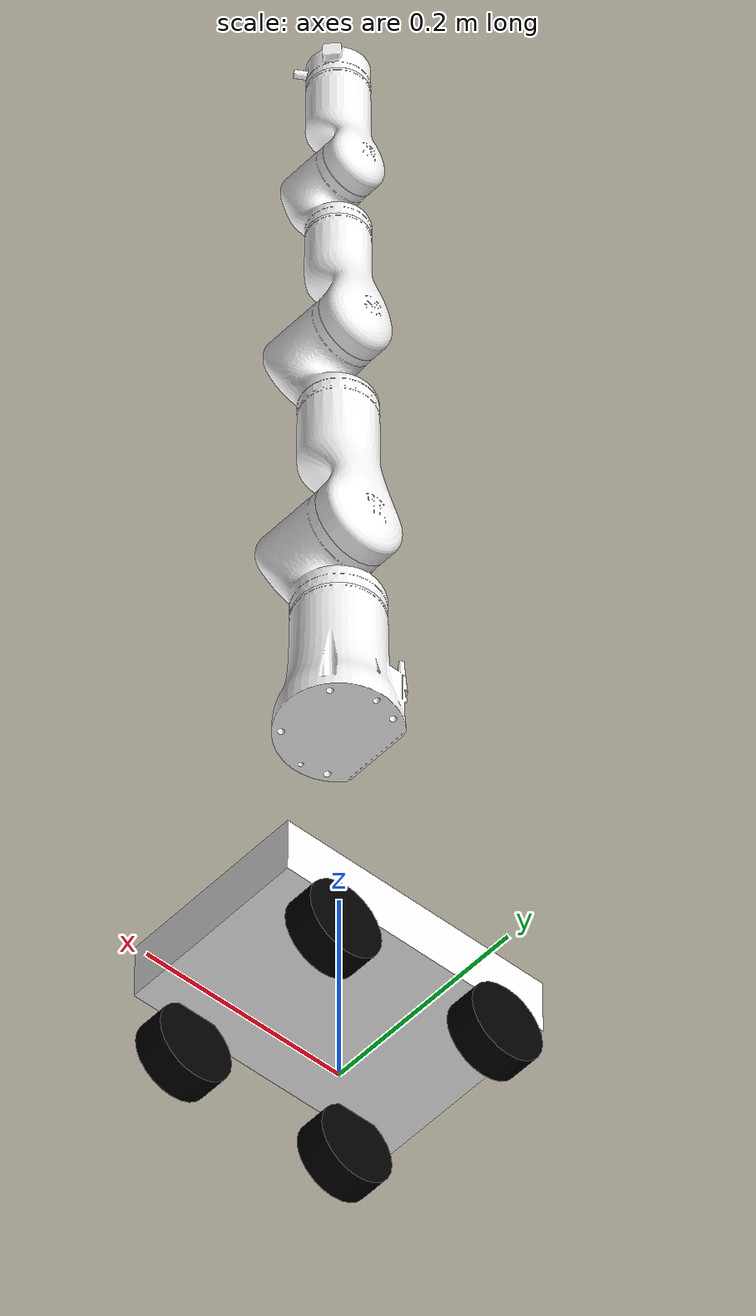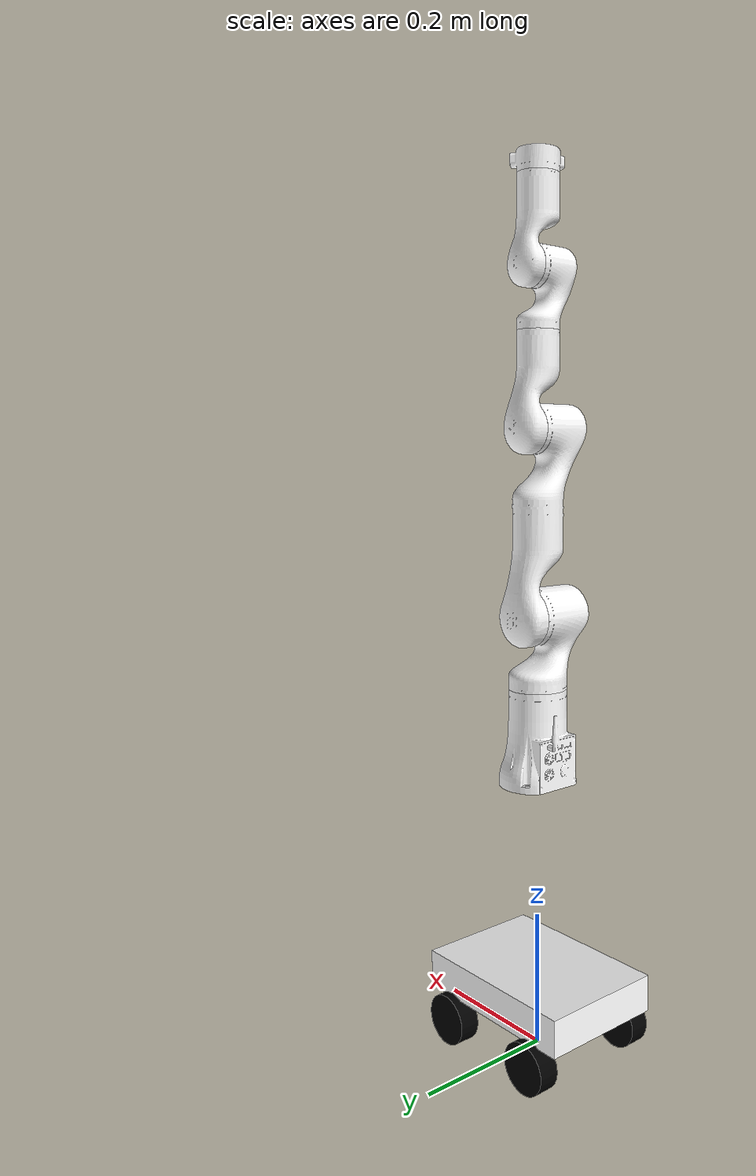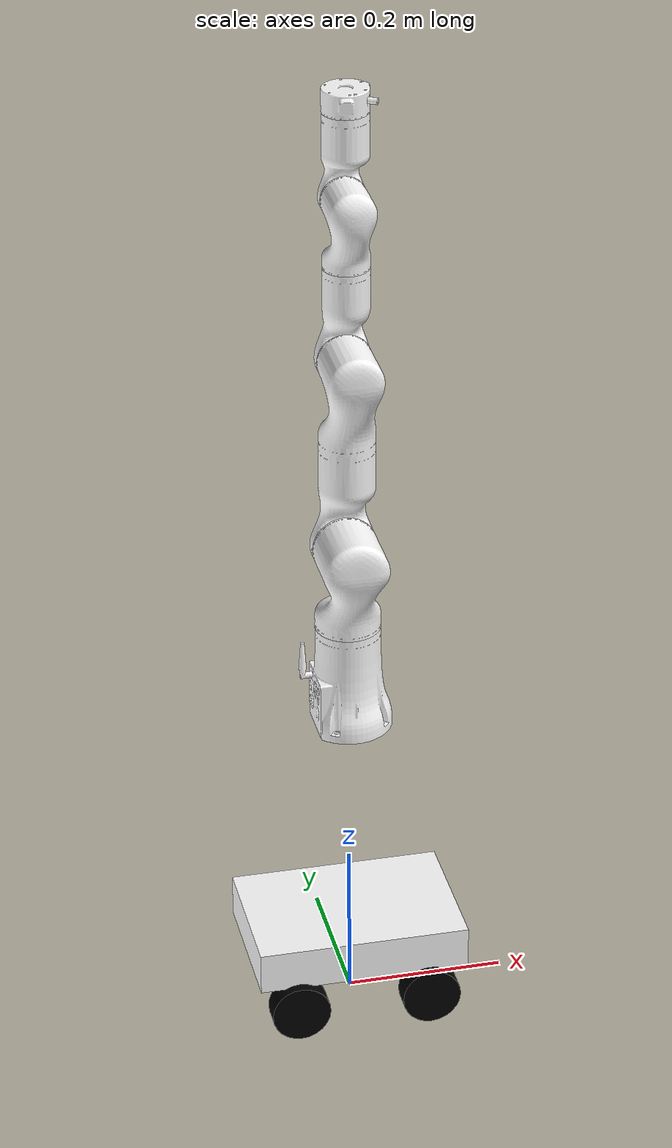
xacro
<?xml version="1.0" encoding="utf-8"?>
<robot name="rm_65_with_wheeltec" xmlns:xacro="http://www.ros.org/wiki/xacro">
<xacro:include filename="$(find rm_65_description)/urdf/rm_65.transmission.xacro"/>
<xacro:include filename="$(find rm_65_description)/urdf/rm_65.gazebo.xacro"/>

  <!-- =========================== Wheeltec Mobile Base =========================== -->
  <link name="base_link_wheeltec">
    <inertial>
      <origin xyz="0 0 0.0975" rpy="0 0 0"/>
      <mass value="5.0"/>
      <inertia
        ixx="0.1"
        ixy="0.0"
        ixz="0.0"
        iyy="0.1"
        iyz="0.0"
        izz="0.1"/>
    </inertial>
    <visual>
      <origin xyz="0 0 0.0975" rpy="0 0 0" />
      <geometry>
        <box size="0.27 0.185 0.055"/>
      </geometry>
      <material name="white">
        <color rgba="1 1 1 1"/>
      </material>
    </visual>
    <collision>
      <origin xyz="0 0 0.0975" rpy="0 0 0" />
      <geometry>
        <box size="0.27 0.185 0.055"/>
      </geometry>
    </collision>
  </link>

  <!-- 添加Gazebo物理属性 -->
  <gazebo reference="base_link_wheeltec">
    <mu1 value="0.5"/>
    <mu2 value="0.5"/>
    <kp value="1000000.0"/>
    <kd value="100.0"/>
  </gazebo>

  <!-- 前左轮 -->
  <joint name="left_front_joint" type="continuous">
    <origin xyz="0.085 0.09 0.0375" rpy="1.57 0 0"/>
    <parent link="base_link_wheeltec"/>
    <child link="left_front_link"/>
    <axis xyz="0 1 0"/>
  </joint>

  <link name="left_front_link">
    <inertial>
      <origin xyz="0 0 0" rpy="0 0 0"/>
      <mass value="0.5"/>
      <inertia
        ixx="0.0005"
        ixy="0.0"
        ixz="0.0"
        iyy="0.001"
        iyz="0.0"
        izz="0.0005"/>
    </inertial>
    <visual>
      <origin xyz="0 0 0" rpy="0 0 0" />
      <geometry>
        <cylinder radius="0.0375" length="0.03"/>
      </geometry>
      <material name="black">
        <color rgba="0 0 0 1"/>
      </material>
    </visual>
    <collision>
      <origin xyz="0 0 0" rpy="0 0 0" />
      <geometry>
        <cylinder radius="0.0375" length="0.03"/>
      </geometry>
    </collision>
  </link>

  <!-- 前右轮 -->
  <joint name="right_front_joint" type="continuous">
    <origin xyz="0.085 -0.09 0.0375" rpy="1.57 0 0"/>
    <parent link="base_link_wheeltec"/>
    <child link="right_front_link"/>
    <axis xyz="0 1 0"/>
  </joint>

  <link name="right_front_link">
    <inertial>
      <origin xyz="0 0 0" rpy="0 0 0"/>
      <mass value="0.5"/>
      <inertia
        ixx="0.0005"
        ixy="0.0"
        ixz="0.0"
        iyy="0.001"
        iyz="0.0"
        izz="0.0005"/>
    </inertial>
    <visual>
      <origin xyz="0 0 0" rpy="0 0 0" />
      <geometry>
        <cylinder radius="0.0375" length="0.03"/>
      </geometry>
      <material name="black">
        <color rgba="0 0 0 1"/>
      </material>
    </visual>
    <collision>
      <origin xyz="0 0 0" rpy="0 0 0" />
      <geometry>
        <cylinder radius="0.0375" length="0.03"/>
      </geometry>
    </collision>
  </link>

  <!-- 后左轮 -->
  <joint name="left_wheel_joint" type="continuous">
    <origin xyz="-0.085 0.09 0.0375" rpy="1.57 0 0"/>
    <parent link="base_link_wheeltec"/>
    <child link="left_wheel_link"/>
    <axis xyz="0 1 0"/>
  </joint>

  <link name="left_wheel_link">
    <inertial>
      <origin xyz="0 0 0" rpy="0 0 0"/>
      <mass value="0.5"/>
      <inertia
        ixx="0.0005"
        ixy="0.0"
        ixz="0.0"
        iyy="0.001"
        iyz="0.0"
        izz="0.0005"/>
    </inertial>
    <visual>
      <origin xyz="0 0 0" rpy="0 0 0" />
      <geometry>
        <cylinder radius="0.0375" length="0.03"/>
      </geometry>
      <material name="black">
        <color rgba="0 0 0 1"/>
      </material>
    </visual>
    <collision>
      <origin xyz="0 0 0" rpy="0 0 0" />
      <geometry>
        <cylinder radius="0.0375" length="0.03"/>
      </geometry>
    </collision>
  </link>

  <!-- 后右轮 -->
  <joint name="right_wheel_joint" type="continuous">
    <origin xyz="-0.085 -0.09 0.0375" rpy="1.57 0 0"/>
    <parent link="base_link_wheeltec"/>
    <child link="right_wheel_link"/>
    <axis xyz="0 1 0"/>
  </joint>

  <link name="right_wheel_link">
    <inertial>
      <origin xyz="0 0 0" rpy="0 0 0"/>
      <mass value="0.5"/>
      <inertia
        ixx="0.0005"
        ixy="0.0"
        ixz="0.0"
        iyy="0.001"
        iyz="0.0"
        izz="0.0005"/>
    </inertial>
    <visual>
      <origin xyz="0 0 0" rpy="0 0 0" />
      <geometry>
        <cylinder radius="0.0375" length="0.03"/>
      </geometry>
      <material name="black">
        <color rgba="0 0 0 1"/>
      </material>
    </visual>
    <collision>
      <origin xyz="0 0 0" rpy="0 0 0" />
      <geometry>
        <cylinder radius="0.0375" length="0.03"/>
      </geometry>
    </collision>
  </link>

  <!-- 为轮子添加Gazebo插件 -->
  <gazebo reference="left_front_link">
    <mu1 value="1.0"/>
    <mu2 value="1.0"/>
  </gazebo>
  <gazebo reference="right_front_link">
    <mu1 value="1.0"/>
    <mu2 value="1.0"/>
  </gazebo>
  <gazebo reference="left_wheel_link">
    <mu1 value="1.0"/>
    <mu2 value="1.0"/>
  </gazebo>
  <gazebo reference="right_wheel_link">
    <mu1 value="1.0"/>
    <mu2 value="1.0"/>
  </gazebo>

  <!-- =========================== RM-65 Arm Base (放在Wheeltec上方20cm) =========================== -->
  <!-- 连接关节：从Wheeltec底盘到RM-65基座 -->
  <joint name="wheeltec_to_arm_joint" type="fixed">
    <origin xyz="0 0 0.4" rpy="0 0 3.1415926"/>
    <parent link="base_link_wheeltec"/>
    <child link="base_link"/>
  </joint>

  <!-- RM-65机械臂的base_link -->
  <link name="base_link">
    <inertial>
      <origin
        xyz="-0.000433277303987328 -3.54664423471128E-05 0.0599427668933796"
        rpy="0 0 0" />
      <mass
        value="0.841070778135659" />
      <inertia
        ixx="0.0017261110801622"
        ixy="2.52746264980217E-06"
        ixz="-3.67690303614961E-05"
        iyy="0.00170987405835604"
        iyz="1.67996364994424E-06"
        izz="0.000904023422915791" />
    </inertial>
    <visual>
      <origin
        xyz="0 0 0"
        rpy="0 0 0" />
      <geometry>
        <mesh
          filename="package://rm_65_description/meshes/base_link.STL" />
      </geometry>
      <material
        name="">
        <color
          rgba="1 1 1 1" />
      </material>
    </visual>
    <collision>
      <origin
        xyz="0 0 0"
        rpy="0 0 0" />
      <geometry>
        <mesh
          filename="package://rm_65_description/meshes/base_link.STL" />
      </geometry>
    </collision>
  </link>

  <gazebo reference="base_link">
    <mu1 value="200000.0"/>
    <mu2 value="200000.0"/>
    <kp value="100000000.0"/>
    <kd value="1.0"/>
  </gazebo>

  <!-- =========================== RM-65 Arm Links and Joints =========================== -->
  <link
    name="Link1">
    <inertial>
      <origin
        xyz="1.2226305431569E-08 0.0211079974844683 -0.0251854220842269"
        rpy="0 0 0" />
      <mass
        value="0.593563443690403" />
      <inertia
        ixx="0.00126614120341847"
        ixy="-1.294980943835E-08"
        ixz="-9.80120923066996E-09"
        iyy="0.00118168178300364"
        iyz="-0.00021121727444415"
        izz="0.00056135241627747" />
    </inertial>
    <visual>
      <origin
        xyz="0 0 0"
        rpy="0 0 0" />
      <geometry>
        <mesh
          filename="package://rm_65_description/meshes/link1.STL" />
      </geometry>
      <material
        name="">
        <color
          rgba="1 1 1 1" />
      </material>
    </visual>
    <collision>
      <origin
        xyz="0 0 0"
        rpy="0 0 0" />
      <geometry>
        <mesh
          filename="package://rm_65_description/meshes/link1.STL" />
      </geometry>
    </collision>
  </link>
  <joint
    name="joint1"
    type="revolute">
    <origin
      xyz="0 0 0.2405"
      rpy="0 0 0" />
    <parent
      link="base_link" />
    <child
      link="Link1" />
    <axis
      xyz="0 0 1" />
    <limit
      lower="-3.1"
      upper="3.1"
      effort="60"
      velocity="3.14" />
	<dynamics damping="50" friction="1"/>
  </joint>
  <link
    name="Link2">
    <inertial>
      <origin
        xyz="0.152256463426163 4.75383656106654E-07 -0.00620260383607792"
        rpy="0 0 0" />
      <mass
        value="0.864175046869043" />
      <inertia
        ixx="0.00089150298478414"
        ixy="-2.23268489334765E-08"
        ixz="0.00156246461035015"
        iyy="0.00733754343083901"
        iyz="6.28110889329165E-09"
        izz="0.00697869103915473" />
    </inertial>
    <visual>
      <origin
        xyz="0 0 0"
        rpy="0 0 0" />
      <geometry>
        <mesh
          filename="package://rm_65_description/meshes/link2.STL" />
      </geometry>
      <material
        name="">
        <color
          rgba="1 1 1 1" />
      </material>
    </visual>
    <collision>
      <origin
        xyz="0 0 0"
        rpy="0 0 0" />
      <geometry>
        <mesh
          filename="package://rm_65_description/meshes/link2.STL" />
      </geometry>
    </collision>
  </link>
  <joint
    name="joint2"
    type="revolute">
    <origin
      xyz="0 0 0"
      rpy="1.5708 -1.5708 0" />
    <parent
      link="Link1" />
    <child
      link="Link2" />
    <axis
      xyz="0 0 1" />
    <limit
      lower="-2.268"
      upper="2.268"
      effort="60"
      velocity="3.14" />
	<dynamics damping="50" friction="1"/>
  </joint>
  <link
    name="Link3">
    <inertial>
      <origin
        xyz="5.05312670989961E-06 -0.0595925663694732 0.010569069212336"
        rpy="0 0 0" />
      <mass
        value="0.289633681624654" />
      <inertia
        ixx="0.00063737100450158"
        ixy="-7.05261293649751E-08"
        ixz="-3.86643272239426E-08"
        iyy="0.00015648388095025"
        iyz="-0.00014461035994916"
        izz="0.000614178164773085" />
    </inertial>
    <visual>
      <origin
        xyz="0 0 0"
        rpy="0 0 0" />
      <geometry>
        <mesh
          filename="package://rm_65_description/meshes/link3.STL" />
      </geometry>
      <material
        name="">
        <color
          rgba="1 1 1 1" />
      </material>
    </visual>
    <collision>
      <origin
        xyz="0 0 0"
        rpy="0 0 0" />
      <geometry>
        <mesh
          filename="package://rm_65_description/meshes/link3.STL" />
      </geometry>
    </collision>
  </link>
  <joint
    name="joint3"
    type="revolute">
    <origin
      xyz="0.256 0 0"
      rpy="0 0 1.5708" />
    <parent
      link="Link2" />
    <child
      link="Link3" />
    <axis
      xyz="0 0 1" />
    <limit
      lower="-2.355"
      upper="2.355"
      effort="30"
      velocity="3.92" />
	<dynamics damping="50" friction="1"/>
  </joint>
  <link
    name="Link4">
    <inertial>
      <origin
        xyz="1.15516617405898E-06 -0.0180424468598241 -0.0215394748352687"
        rpy="0 0 0" />
      <mass
        value="0.239419768320061" />
      <inertia
        ixx="0.000285938919722783"
        ixy="3.07101359163101E-09"
        ixz="-2.21994118981953E-09"
        iyy="0.000262727540304212"
        iyz="4.4236583260078E-05"
        izz="0.000119888082791859" />
    </inertial>
    <visual>
      <origin
        xyz="0 0 0"
        rpy="0 0 0" />
      <geometry>
        <mesh
          filename="package://rm_65_description/meshes/link4.STL" />
      </geometry>
      <material
        name="">
        <color
          rgba="1 1 1 1" />
      </material>
    </visual>
    <collision>
      <origin
        xyz="0 0 0"
        rpy="0 0 0" />
      <geometry>
        <mesh
          filename="package://rm_65_description/meshes/link4.STL" />
      </geometry>
    </collision>
  </link>
  <joint
    name="joint4"
    type="revolute">
    <origin
      xyz="0 -0.21 0"
      rpy="1.5708 0 0" />
    <parent
      link="Link3" />
    <child
      link="Link4" />
    <axis
      xyz="0 0 1" />
    <limit
      lower="-3.1"
      upper="3.1"
      effort="10"
      velocity="3.92" />
	<dynamics damping="50" friction="1"/>
  </joint>
  <link
    name="Link5">
    <inertial>
      <origin
        xyz="3.19794786262152E-06 -0.0593808368101458 0.00736804250989326"
        rpy="0 0 0" />
      <mass
        value="0.218799761431678" />
      <inertia
        ixx="0.000350540363914072"
        ixy="-3.41781619975602E-08"
        ixz="-1.77056457224373E-08"
        iyy="0.000104927867487581"
        iyz="-7.82431228461971E-05"
        izz="0.000334482418423629" />
    </inertial>
    <visual>
      <origin
        xyz="0 0 0"
        rpy="0 0 0" />
      <geometry>
        <mesh
          filename="package://rm_65_description/meshes/link5.STL" />
      </geometry>
      <material
        name="">
        <color
          rgba="1 1 1 1" />
      </material>
    </visual>
    <collision>
      <origin
        xyz="0 0 0"
        rpy="0 0 0" />
      <geometry>
        <mesh
          filename="package://rm_65_description/meshes/link5.STL" />
      </geometry>
    </collision>
  </link>
  <joint
    name="joint5"
    type="revolute">
    <origin
      xyz="0 0 0"
      rpy="-1.5708 0 0" />
    <parent
      link="Link4" />
    <child
      link="Link5" />
    <axis
      xyz="0 0 1" />
    <limit
      lower="-2.233"
      upper="2.233"
      effort="10"
      velocity="3.92" />
	<dynamics damping="50" friction="1"/>
  </joint>
  <link
    name="Link6">
    <inertial>
      <origin
        xyz="0.000714234511756999 -0.000396718732824521 -0.0126723660946126"
        rpy="0 0 0" />
      <mass
        value="0.0649018034311231" />
      <inertia
        ixx="2.02766547502765E-05"
        ixy="-1.32505200276849E-06"
        ixz="-2.5845091522508E-08"
        iyy="1.87986725225022E-05"
        iyz="3.39471452125439E-09"
        izz="3.17885459163081E-05" />
    </inertial>
    <visual>
      <origin
        xyz="0 0 0"
        rpy="0 0 0" />
      <geometry>
        <mesh
          filename="package://rm_65_description/meshes/link6.STL" />
      </geometry>
      <material
        name="">
        <color
          rgba="1 1 1 1" />
      </material>
    </visual>
    <collision>
      <origin
        xyz="0 0 0"
        rpy="0 0 0" />
      <geometry>
        <mesh
          filename="package://rm_65_description/meshes/link6.STL" />
      </geometry>
    </collision>
  </link>
  <joint
    name="joint6"
    type="revolute">
    <origin
      xyz="0 -0.144 0"
      rpy="1.5708 0 0" />
    <parent
      link="Link5" />
    <child
      link="Link6" />
    <axis
      xyz="0 0 1" />
    <limit
      lower="-6.28"
      upper="6.28"
      effort="10"
      velocity="3.92" />
	<dynamics damping="50" friction="1"/>
  </joint>

  <!-- =========================== Transmission and Control =========================== -->
  <!-- Transmissions for ROS Control -->
  <xacro:macro name="transmission_block" params="joint_name">
    <transmission name="tran1">
      <type>transmission_interface/SimpleTransmission</type>
      <joint name="${joint_name}">
        <hardwareInterface>hardware_interface/PositionJointInterface</hardwareInterface>
      </joint>
      <actuator name="motor1">
        <hardwareInterface>hardware_interface/PositionJointInterface</hardwareInterface>
        <mechanicalReduction>1</mechanicalReduction>
      </actuator>
    </transmission>
  </xacro:macro>

  <xacro:transmission_block joint_name="joint1"/>
  <xacro:transmission_block joint_name="joint2"/>
  <xacro:transmission_block joint_name="joint3"/>
  <xacro:transmission_block joint_name="joint4"/>
  <xacro:transmission_block joint_name="joint5"/>
  <xacro:transmission_block joint_name="joint6"/>

  <!-- 为移动底座添加传输（可选，如果需要控制轮子） -->
  <xacro:transmission_block joint_name="left_front_joint"/>
  <xacro:transmission_block joint_name="right_front_joint"/>
  <xacro:transmission_block joint_name="left_wheel_joint"/>
  <xacro:transmission_block joint_name="right_wheel_joint"/>

  <!-- ros_control plugin -->
  <gazebo>
    <plugin name="gazebo_ros_control" filename="libgazebo_ros_control.so">
      <robotNamespace>/arm</robotNamespace>
      <robotSimType>gazebo_ros_control/DefaultRobotHWSim</robotSimType>
      <legacyModeNS>true</legacyModeNS>
    </plugin>
  </gazebo>
</robot>
